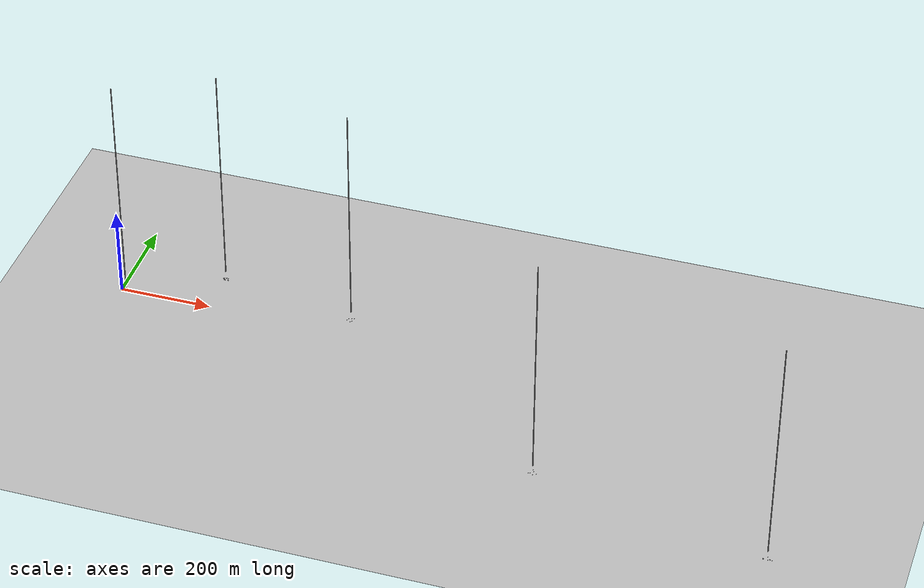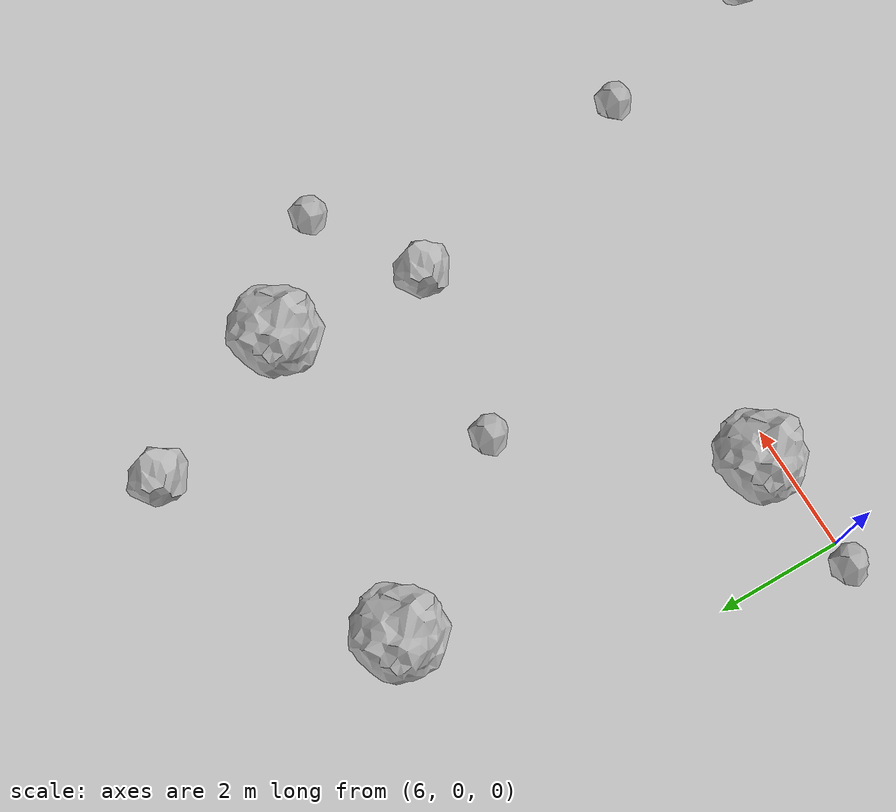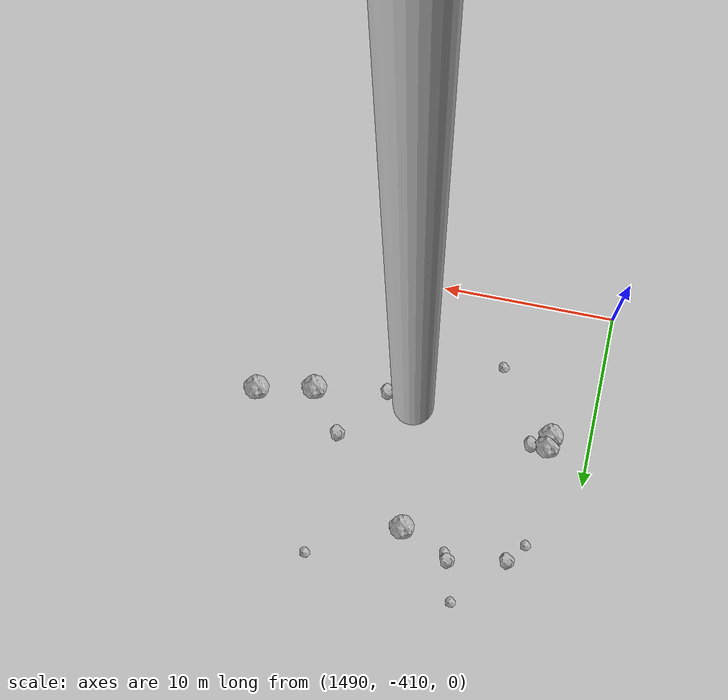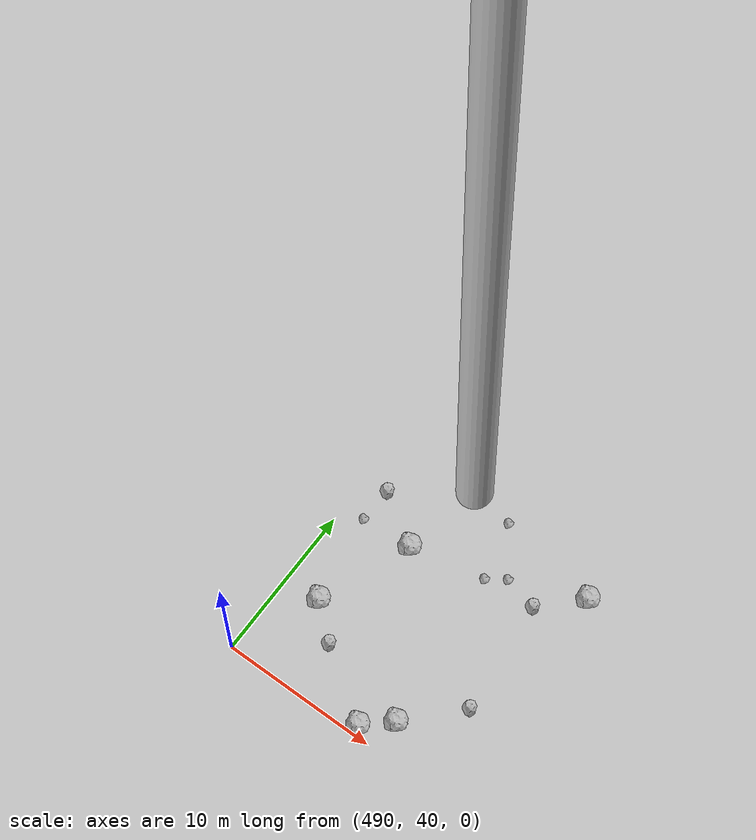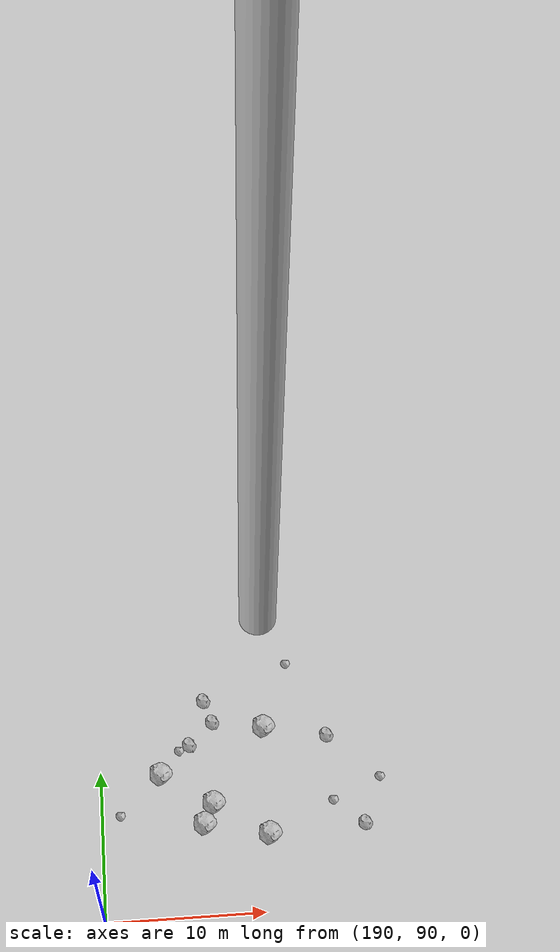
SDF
<?xml version="1.0" ?>
<sdf version="1.6">
  <world name="default">

    <include>
      <uri>model://custom_ground</uri>
    </include>

    <include>
      <uri>model://sun</uri>
    </include>

    <spherical_coordinates>
      <surface_model>EARTH_WGS84</surface_model>
      <latitude_deg>38.161479</latitude_deg>
      <longitude_deg>-122.454630</longitude_deg>
      <elevation>488.0</elevation>
      <heading_deg>90</heading_deg>
    </spherical_coordinates>

    <model name="rock1_0_0">
      <include>
        <uri>model://rock1</uri>
        <pose>7.649535095009867 0.3619064850280047 0.5 0 0 0</pose>
      </include>
    </model>
    <model name="rock1_0_1">
      <include>
        <uri>model://rock1</uri>
        <pose>13.00112492088114 5.642495774517229 0.5 0 0 0</pose>
      </include>
    </model>
    <model name="rock1_0_2">
      <include>
        <uri>model://rock1</uri>
        <pose>8.074844121704594 6.292289690602374 0.5 0 0 0</pose>
      </include>
    </model>
    <model name="rock1_0_3">
      <include>
        <uri>model://rock1</uri>
        <pose>17.671312269536948 -1.4043681402474633 0.5 0 0 0</pose>
      </include>
    </model>
    <model name="rock1_0_4">
      <include>
        <uri>model://rock1</uri>
        <pose>2.227267714833414 -5.046362178775912 0.5 0 0 0</pose>
      </include>
    </model>
    <model name="rock2_0_0">
      <include>
        <uri>model://rock2</uri>
        <pose>9.707657545426535 -4.871833602145537 0.3 0 0 0</pose>
      </include>
    </model>
    <model name="rock2_0_1">
      <include>
        <uri>model://rock2</uri>
        <pose>11.908130805666293 8.214043811535635 0.3 0 0 0</pose>
      </include>
    </model>
    <model name="rock2_0_2">
      <include>
        <uri>model://rock2</uri>
        <pose>12.791747997347315 3.1673291440432187 0.3 0 0 0</pose>
      </include>
    </model>
    <model name="rock2_0_3">
      <include>
        <uri>model://rock2</uri>
        <pose>2.352167321964367 -4.044952698397801 0.3 0 0 0</pose>
      </include>
    </model>
    <model name="rock2_0_4">
      <include>
        <uri>model://rock2</uri>
        <pose>14.640697204709163 -3.862796283604375 0.3 0 0 0</pose>
      </include>
    </model>
    <model name="rock3_0_0">
      <include>
        <uri>model://rock3</uri>
        <pose>13.765991187743737 -1.0052767614463392 0.2 0 0 0</pose>
      </include>
    </model>
    <model name="rock3_0_1">
      <include>
        <uri>model://rock3</uri>
        <pose>9.983808124261195 3.5866266559982467 0.2 0 0 0</pose>
      </include>
    </model>
    <model name="rock3_0_2">
      <include>
        <uri>model://rock3</uri>
        <pose>16.564459914964623 -0.9273838010148943 0.2 0 0 0</pose>
      </include>
    </model>
    <model name="rock3_0_3">
      <include>
        <uri>model://rock3</uri>
        <pose>14.490838367272314 4.206185678480956 0.2 0 0 0</pose>
      </include>
    </model>
    <model name="rock3_0_4">
      <include>
        <uri>model://rock3</uri>
        <pose>5.614688585894672 0.016147011802640776 0.2 0 0 0</pose>
      </include>
    </model>
    <model name="rock1_1_0">
      <include>
        <uri>model://rock1</uri>
        <pose>193.8957741042942 99.46340079473543 0.5 0 0 0</pose>
      </include>
    </model>
    <model name="rock1_1_1">
      <include>
        <uri>model://rock1</uri>
        <pose>200.63167878239713 94.99959638973218 0.5 0 0 0</pose>
      </include>
    </model>
    <model name="rock1_1_2">
      <include>
        <uri>model://rock1</uri>
        <pose>200.75690478141775 102.35605659678505 0.5 0 0 0</pose>
      </include>
    </model>
    <model name="rock1_1_3">
      <include>
        <uri>model://rock1</uri>
        <pose>196.54005854464387 95.91878616823624 0.5 0 0 0</pose>
      </include>
    </model>
    <model name="rock1_1_4">
      <include>
        <uri>model://rock1</uri>
        <pose>197.18820562366764 97.29070944326062 0.5 0 0 0</pose>
      </include>
    </model>
    <model name="rock2_1_0">
      <include>
        <uri>model://rock2</uri>
        <pose>197.3986040899197 102.98425446694898 0.3 0 0 0</pose>
      </include>
    </model>
    <model name="rock2_1_1">
      <include>
        <uri>model://rock2</uri>
        <pose>196.90287032699297 104.55091205053566 0.3 0 0 0</pose>
      </include>
    </model>
    <model name="rock2_1_2">
      <include>
        <uri>model://rock2</uri>
        <pose>204.7993062604109 101.56671939839664 0.3 0 0 0</pose>
      </include>
    </model>
    <model name="rock2_1_3">
      <include>
        <uri>model://rock2</uri>
        <pose>195.80795797561484 101.4663156209111 0.3 0 0 0</pose>
      </include>
    </model>
    <model name="rock2_1_4">
      <include>
        <uri>model://rock2</uri>
        <pose>206.71916977366544 95.35128780837954 0.3 0 0 0</pose>
      </include>
    </model>
    <model name="rock3_1_0">
      <include>
        <uri>model://rock3</uri>
        <pose>204.83987620339417 97.02883059314217 0.2 0 0 0</pose>
      </include>
    </model>
    <model name="rock3_1_1">
      <include>
        <uri>model://rock3</uri>
        <pose>202.5480866339895 106.9137710398258 0.2 0 0 0</pose>
      </include>
    </model>
    <model name="rock3_1_2">
      <include>
        <uri>model://rock3</uri>
        <pose>207.98269020961746 98.43269928328387 0.2 0 0 0</pose>
      </include>
    </model>
    <model name="rock3_1_3">
      <include>
        <uri>model://rock3</uri>
        <pose>195.1217503252386 101.09799396002954 0.2 0 0 0</pose>
      </include>
    </model>
    <model name="rock3_1_4">
      <include>
        <uri>model://rock3</uri>
        <pose>191.1670149414235 96.85876174773365 0.2 0 0 0</pose>
      </include>
    </model>
    <model name="rock1_2_0">
      <include>
        <uri>model://rock1</uri>
        <pose>492.3846151367018 45.39098110736323 0.5 0 0 0</pose>
      </include>
    </model>
    <model name="rock1_2_1">
      <include>
        <uri>model://rock1</uri>
        <pose>498.8964290263671 40.59013342229692 0.5 0 0 0</pose>
      </include>
    </model>
    <model name="rock1_2_2">
      <include>
        <uri>model://rock1</uri>
        <pose>494.751645024929 51.26405025850465 0.5 0 0 0</pose>
      </include>
    </model>
    <model name="rock1_2_3">
      <include>
        <uri>model://rock1</uri>
        <pose>505.23281574493706 54.86916603276456 0.5 0 0 0</pose>
      </include>
    </model>
    <model name="rock1_2_4">
      <include>
        <uri>model://rock1</uri>
        <pose>500.57432728765417 42.05663155298862 0.5 0 0 0</pose>
      </include>
    </model>
    <model name="rock2_2_0">
      <include>
        <uri>model://rock2</uri>
        <pose>494.4942408344163 43.581342616599294 0.3 0 0 0</pose>
      </include>
    </model>
    <model name="rock2_2_1">
      <include>
        <uri>model://rock2</uri>
        <pose>503.5335075162604 45.28525799570349 0.3 0 0 0</pose>
      </include>
    </model>
    <model name="rock2_2_2">
      <include>
        <uri>model://rock2</uri>
        <pose>502.8523997853482 52.55900861737405 0.3 0 0 0</pose>
      </include>
    </model>
    <model name="rock2_2_3">
      <include>
        <uri>model://rock2</uri>
        <pose>500.44927621221035 42.13578092137975 0.3 0 0 0</pose>
      </include>
    </model>
    <model name="rock2_2_4">
      <include>
        <uri>model://rock2</uri>
        <pose>491.5293051151945 53.32785738729044 0.3 0 0 0</pose>
      </include>
    </model>
    <model name="rock3_2_0">
      <include>
        <uri>model://rock3</uri>
        <pose>503.54685726709187 45.3904677022689 0.2 0 0 0</pose>
      </include>
    </model>
    <model name="rock3_2_1">
      <include>
        <uri>model://rock3</uri>
        <pose>491.4252738736964 51.03617711729832 0.2 0 0 0</pose>
      </include>
    </model>
    <model name="rock3_2_2">
      <include>
        <uri>model://rock3</uri>
        <pose>498.6100121497742 55.97027660515639 0.2 0 0 0</pose>
      </include>
    </model>
    <model name="rock3_2_3">
      <include>
        <uri>model://rock3</uri>
        <pose>499.5039427589132 52.25491157143823 0.2 0 0 0</pose>
      </include>
    </model>
    <model name="rock3_2_4">
      <include>
        <uri>model://rock3</uri>
        <pose>500.6647575098775 53.05067195020181 0.2 0 0 0</pose>
      </include>
    </model>
    <model name="rock1_3_0">
      <include>
        <uri>model://rock1</uri>
        <pose>998.3486117082593 -290.78109036592974 0.5 0 0 0</pose>
      </include>
    </model>
    <model name="rock1_3_1">
      <include>
        <uri>model://rock1</uri>
        <pose>1001.8548588302722 -304.1651194444394 0.5 0 0 0</pose>
      </include>
    </model>
    <model name="rock1_3_2">
      <include>
        <uri>model://rock1</uri>
        <pose>1001.9373214624404 -295.38409785057024 0.5 0 0 0</pose>
      </include>
    </model>
    <model name="rock1_3_3">
      <include>
        <uri>model://rock1</uri>
        <pose>991.9332675160805 -301.81393241030656 0.5 0 0 0</pose>
      </include>
    </model>
    <model name="rock1_3_4">
      <include>
        <uri>model://rock1</uri>
        <pose>1007.7214581808323 -301.21863077230034 0.5 0 0 0</pose>
      </include>
    </model>
    <model name="rock2_3_0">
      <include>
        <uri>model://rock2</uri>
        <pose>1007.7851190944315 -299.92365282016345 0.3 0 0 0</pose>
      </include>
    </model>
    <model name="rock2_3_1">
      <include>
        <uri>model://rock2</uri>
        <pose>996.9080971086015 -303.19071930355096 0.3 0 0 0</pose>
      </include>
    </model>
    <model name="rock2_3_2">
      <include>
        <uri>model://rock2</uri>
        <pose>993.4541189623218 -300.2362660483898 0.3 0 0 0</pose>
      </include>
    </model>
    <model name="rock2_3_3">
      <include>
        <uri>model://rock2</uri>
        <pose>1007.6392081047088 -296.0889897877998 0.3 0 0 0</pose>
      </include>
    </model>
    <model name="rock2_3_4">
      <include>
        <uri>model://rock2</uri>
        <pose>1002.8412465925558 -302.9786155503223 0.3 0 0 0</pose>
      </include>
    </model>
    <model name="rock3_3_0">
      <include>
        <uri>model://rock3</uri>
        <pose>1007.9757164294914 -297.330816482977 0.2 0 0 0</pose>
      </include>
    </model>
    <model name="rock3_3_1">
      <include>
        <uri>model://rock3</uri>
        <pose>1000.112301164741 -307.4210014894155 0.2 0 0 0</pose>
      </include>
    </model>
    <model name="rock3_3_2">
      <include>
        <uri>model://rock3</uri>
        <pose>1004.5452975109139 -302.8235649889909 0.2 0 0 0</pose>
      </include>
    </model>
    <model name="rock3_3_3">
      <include>
        <uri>model://rock3</uri>
        <pose>995.0727085467041 -300.4084696647882 0.2 0 0 0</pose>
      </include>
    </model>
    <model name="rock3_3_4">
      <include>
        <uri>model://rock3</uri>
        <pose>1002.6234002232304 -292.6419432567013 0.2 0 0 0</pose>
      </include>
    </model>
    <model name="rock1_4_0">
      <include>
        <uri>model://rock1</uri>
        <pose>1492.3495457918768 -402.5035570126852 0.5 0 0 0</pose>
      </include>
    </model>
    <model name="rock1_4_1">
      <include>
        <uri>model://rock1</uri>
        <pose>1499.8635319503103 -395.67587966131043 0.5 0 0 0</pose>
      </include>
    </model>
    <model name="rock1_4_2">
      <include>
        <uri>model://rock1</uri>
        <pose>1506.4131985930924 -402.7373988819544 0.5 0 0 0</pose>
      </include>
    </model>
    <model name="rock1_4_3">
      <include>
        <uri>model://rock1</uri>
        <pose>1492.4461813871112 -401.8936423588413 0.5 0 0 0</pose>
      </include>
    </model>
    <model name="rock1_4_4">
      <include>
        <uri>model://rock1</uri>
        <pose>1509.721647096144 -402.09299290721657 0.5 0 0 0</pose>
      </include>
    </model>
    <model name="rock2_4_0">
      <include>
        <uri>model://rock2</uri>
        <pose>1493.5413380839304 -394.8959444932396 0.3 0 0 0</pose>
      </include>
    </model>
    <model name="rock2_4_1">
      <include>
        <uri>model://rock2</uri>
        <pose>1493.3825291050784 -401.83009501202486 0.3 0 0 0</pose>
      </include>
    </model>
    <model name="rock2_4_2">
      <include>
        <uri>model://rock2</uri>
        <pose>1502.1396868441295 -403.2981465002545 0.3 0 0 0</pose>
      </include>
    </model>
    <model name="rock2_4_3">
      <include>
        <uri>model://rock2</uri>
        <pose>1504.5804183130456 -400.3614147813848 0.3 0 0 0</pose>
      </include>
    </model>
    <model name="rock2_4_4">
      <include>
        <uri>model://rock2</uri>
        <pose>1496.9392533193231 -394.2897807636064 0.3 0 0 0</pose>
      </include>
    </model>
    <model name="rock3_4_0">
      <include>
        <uri>model://rock3</uri>
        <pose>1496.2746095871807 -391.996512246333 0.2 0 0 0</pose>
      </include>
    </model>
    <model name="rock3_4_1">
      <include>
        <uri>model://rock3</uri>
        <pose>1497.1382448984534 -394.7519149631133 0.2 0 0 0</pose>
      </include>
    </model>
    <model name="rock3_4_2">
      <include>
        <uri>model://rock3</uri>
        <pose>1492.619798840403 -396.02015930191664 0.2 0 0 0</pose>
      </include>
    </model>
    <model name="rock3_4_3">
      <include>
        <uri>model://rock3</uri>
        <pose>1495.7317651816766 -406.0254409055434 0.2 0 0 0</pose>
      </include>
    </model>
    <model name="rock3_4_4">
      <include>
        <uri>model://rock3</uri>
        <pose>1505.0700707152655 -393.2383662760169 0.2 0 0 0</pose>
      </include>
    </model>

    <model name="cylinder_1">
      <static>true</static>
      <link name="link">
        <visual name="visual">
          <geometry>
            <cylinder>
              <radius>1</radius>
              <length>500</length>
            </cylinder>
          </geometry>
        </visual>
      </link>
      <pose>10 0 270 0 0 0</pose>
    </model>

    <model name="cylinder_2">
      <static>true</static>
      <link name="link">
        <visual name="visual">
          <geometry>
            <cylinder>
              <radius>1</radius>
              <length>500</length>
            </cylinder>
          </geometry>
        </visual>
      </link>
      <pose>200 100 270 0 0 0</pose>
    </model>

    <model name="cylinder_3">
      <static>true</static>
      <link name="link">
        <visual name="visual">
          <geometry>
            <cylinder>
              <radius>1</radius>
              <length>500</length>
            </cylinder>
          </geometry>
        </visual>
      </link>
      <pose>500 50 270 0 0 0</pose>
    </model>

    <model name="cylinder_4">
      <static>true</static>
      <link name="link">
        <visual name="visual">
          <geometry>
            <cylinder>
              <radius>1</radius>
              <length>500</length>
            </cylinder>
          </geometry>
        </visual>
      </link>
      <pose>1000 -300 270 0 0 0</pose>
    </model>

    <model name="cylinder_5">
      <static>true</static>
      <link name="link">
        <visual name="visual">
          <geometry>
            <cylinder>
              <radius>1</radius>
              <length>500</length>
            </cylinder>
          </geometry>
        </visual>
      </link>
      <pose>1500 -400 270 0 0 0</pose>
    </model>

  </world>
</sdf>

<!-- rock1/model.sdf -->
<sdf version="1.6">
  <model name="rock1">
    <static>true</static> <!-- Set to true if the model should not move -->
    <pose>0 0 0 0 0 0</pose>

    <!--z offset is 0.5 for full scale-->

    <link name="link">
      <collision name="rock1_collision">
        <geometry>
          <mesh>
            <uri>model://meshes/rock1.dae</uri>
          </mesh>
        </geometry>
      </collision>
      <visual name="rock1_visual">
        <geometry>
          <mesh>
            <uri>model://meshes/rock1.dae</uri>
          </mesh>
        </geometry>
        <material>
          <script>
            <uri>model://materials/scripts/sand_pebbles.material</uri>
            <name>custom_ground/Image</name>
          </script>
        </material>
      </visual>
    </link>
  </model>
</sdf>

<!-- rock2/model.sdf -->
<sdf version="1.6">
  <model name="rock2">
    <static>true</static> <!-- Set to true if the model should not move -->
    <pose>0 0 0 0 0 0</pose>

    <!--z offset is 0.3 for full scale-->

    <link name="link">
      <collision name="rock2_collision">
        <geometry>
          <mesh>
            <uri>model://meshes/rock2.dae</uri>
          </mesh>
        </geometry>
      </collision>
      <visual name="rock2_visual">
        <geometry>
          <mesh>
            <uri>model://meshes/rock2.dae</uri>
          </mesh>
        </geometry>
        <material>
          <script>
            <uri>model://materials/scripts/sand_pebbles.material</uri>
            <name>custom_ground/Image</name>
          </script>
        </material>
      </visual>
    </link>
  </model>
</sdf>

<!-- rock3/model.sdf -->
<sdf version="1.6">
  <model name="rock3">
    <static>true</static> <!-- Set to true if the model should not move -->
    <pose>0 0 0 0 0 0</pose>

    <!--z offset is 0.2 for full scale-->

    <link name="link">
      <collision name="rock3_collision">
        <geometry>
          <mesh>
            <uri>model://meshes/rock3.dae</uri>
          </mesh>
        </geometry>
      </collision>
      <visual name="rock3_visual">
        <geometry>
          <mesh>
            <uri>model://meshes/rock3.dae</uri>
          </mesh>
        </geometry>
        <material>
          <script>
            <uri>model://materials/scripts/sand_pebbles.material</uri>
            <name>custom_ground/Image</name>
          </script>
        </material>
      </visual>
    </link>
  </model>
</sdf>

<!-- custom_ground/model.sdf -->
<sdf version="1.6">
  <model name="custom_ground">
    <static>true</static> <!-- Ground is static and immovable -->
    <link name="ground_link">
      <pose>240 0 0 0 0 0</pose> <!-- Position and orientation relative to the world -->
      <!-- Visual Representation -->
      <visual name="ground_visual">
        <geometry>
          <plane>
            <normal>0 0 1</normal> <!-- Upward facing plane -->
            <size>500 500</size> <!-- Size of the plane -->
          </plane>
        </geometry>
        <material>
          <script>
            <uri>model://materials/scripts/sand_pebbles.material</uri>
            <name>custom_ground/Image</name>
          </script>
        </material>
      </visual>

      <!-- Collision Representation -->
      <collision name="ground_collision">
        <geometry>
          <plane>
            <normal>0 0 1</normal>
            <size>100 100</size>
          </plane>
        </geometry>
      </collision>

    </link>
  </model>
</sdf>
